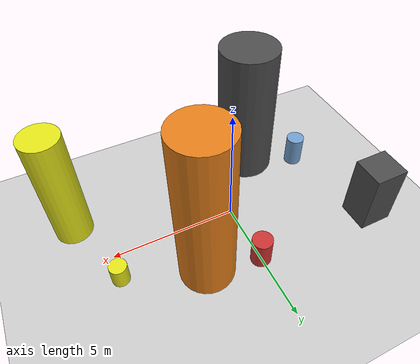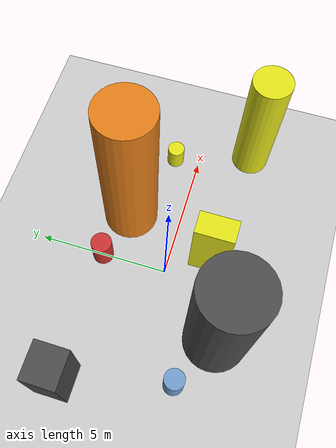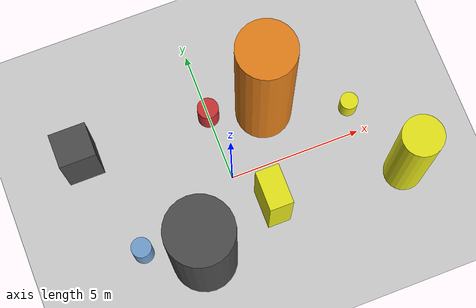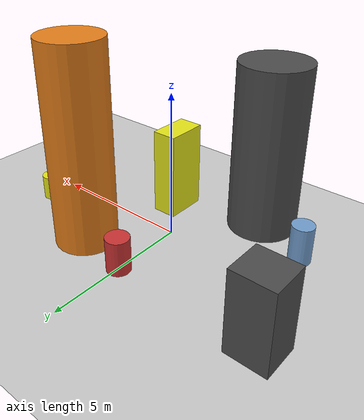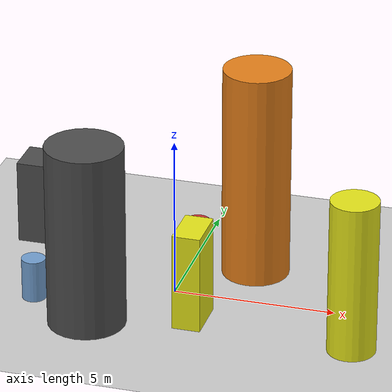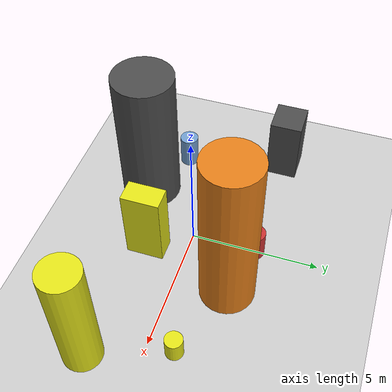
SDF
<?xml version='1.0'?>
<sdf version='1.6'>
  <world name='routeA_rl_v1__support_expansion__rl_train__mixed_3d_low_density_route__000128'>
    <!-- Sun light -->
    <light name='sun' type='directional'>
      <cast_shadows>1</cast_shadows>
      <pose>0 0 10 0 0 0</pose>
      <diffuse>0.8 0.8 0.8 1</diffuse>
      <specular>0.2 0.2 0.2 1</specular>
      <attenuation>
        <range>1000</range>
        <constant>0.9</constant>
        <linear>0.01</linear>
        <quadratic>0.001</quadratic>
      </attenuation>
      <direction>-0.5 0.1 -0.9</direction>
    </light>

    <!-- Ground plane -->
    <model name='ground_plane'>
      <static>1</static>
      <link name='link'>
        <collision name='collision'>
          <geometry>
            <plane>
              <normal>0 0 1</normal>
              <size>100 100</size>
            </plane>
          </geometry>
          <surface>
            <contact>
              <collide_bitmask>65535</collide_bitmask>
              <ode/>
            </contact>
            <friction>
              <ode>
                <mu>100</mu>
                <mu2>50</mu2>
              </ode>
              <torsional><ode/></torsional>
            </friction>
            <bounce/>
          </surface>
          <max_contacts>10</max_contacts>
        </collision>
        <visual name='visual'>
          <cast_shadows>0</cast_shadows>
          <geometry>
            <plane>
              <normal>0 0 1</normal>
              <size>100 100</size>
            </plane>
          </geometry>
          <material>
            <script>
              <uri>file://media/materials/scripts/gazebo.material</uri>
              <n>Gazebo/Grey</n>
            </script>
          </material>
        </visual>
      </link>
    </model>

    <!-- Environment -->
    <magnetic_field>6e-06 2.3e-05 -4.2e-05</magnetic_field>
    <atmosphere type='adiabatic'/>
    <physics name='default_physics' default='0' type='ode'>
      <gravity>0 0 -9.8</gravity>
      <max_step_size>0.004</max_step_size>
      <real_time_factor>1</real_time_factor>
      <real_time_update_rate>250</real_time_update_rate>
    </physics>
    <scene>
      <ambient>0.4 0.4 0.4 1</ambient>
      <background>0.7 0.7 0.7 1</background>
      <shadows>1</shadows>
    </scene>
    <wind/>
    <spherical_coordinates>
      <surface_model>EARTH_WGS84</surface_model>
      <latitude_deg>0</latitude_deg>
      <longitude_deg>0</longitude_deg>
      <elevation>0</elevation>
      <heading_deg>0</heading_deg>
    </spherical_coordinates>

    <!-- ============ OBSTACLES (8) ============ -->
    <model name='low_obs_0'>
      <static>1</static>
      <link name='link'>
        <visual name='visual'>
          <geometry>
            <cylinder>
              <radius>0.3722</radius>
              <length>1.3172</length>
            </cylinder>
          </geometry>
          <material>
            <script>
              <n>Gazebo/Blue</n>
              <uri>file://media/materials/scripts/gazebo.material</uri>
            </script>
            <ambient>0.447 0.624 0.812 1</ambient>
          </material>
        </visual>
        <collision name='collision'>
          <geometry>
            <cylinder>
              <radius>0.3722</radius>
              <length>1.3172</length>
            </cylinder>
          </geometry>
          <max_contacts>10</max_contacts>
          <surface>
            <contact><ode/></contact>
            <bounce/>
            <friction>
              <ode><mu>1</mu><mu2>1</mu2></ode>
              <torsional><ode/></torsional>
            </friction>
          </surface>
        </collision>
      </link>
      <pose>-4.0000 -1.5000 0.6586 0 0 0.0000</pose>
    </model>

    <model name='low_obs_1'>
      <static>1</static>
      <link name='link'>
        <visual name='visual'>
          <geometry>
            <cylinder>
              <radius>0.3966</radius>
              <length>1.1909</length>
            </cylinder>
          </geometry>
          <material>
            <script>
              <n>Gazebo/Red</n>
              <uri>file://media/materials/scripts/gazebo.material</uri>
            </script>
            <ambient>0.8 0.2 0.2 1</ambient>
          </material>
        </visual>
        <collision name='collision'>
          <geometry>
            <cylinder>
              <radius>0.3966</radius>
              <length>1.1909</length>
            </cylinder>
          </geometry>
          <max_contacts>10</max_contacts>
          <surface>
            <contact><ode/></contact>
            <bounce/>
            <friction>
              <ode><mu>1</mu><mu2>1</mu2></ode>
              <torsional><ode/></torsional>
            </friction>
          </surface>
        </collision>
      </link>
      <pose>0.0000 2.5000 0.5954 0 0 0.0000</pose>
    </model>

    <model name='low_obs_2'>
      <static>1</static>
      <link name='link'>
        <visual name='visual'>
          <geometry>
            <cylinder>
              <radius>0.3344</radius>
              <length>0.8762</length>
            </cylinder>
          </geometry>
          <material>
            <script>
              <n>Gazebo/Yellow</n>
              <uri>file://media/materials/scripts/gazebo.material</uri>
            </script>
            <ambient>0.9 0.9 0.1 1</ambient>
          </material>
        </visual>
        <collision name='collision'>
          <geometry>
            <cylinder>
              <radius>0.3344</radius>
              <length>0.8762</length>
            </cylinder>
          </geometry>
          <max_contacts>10</max_contacts>
          <surface>
            <contact><ode/></contact>
            <bounce/>
            <friction>
              <ode><mu>1</mu><mu2>1</mu2></ode>
              <torsional><ode/></torsional>
            </friction>
          </surface>
        </collision>
      </link>
      <pose>5.0000 1.0000 0.4381 0 0 0.0000</pose>
    </model>

    <model name='tall_obs_0'>
      <static>1</static>
      <link name='link'>
        <visual name='visual'>
          <geometry>
            <cylinder>
              <radius>1.1890</radius>
              <length>5.8032</length>
            </cylinder>
          </geometry>
          <material>
            <script>
              <n>Gazebo/DarkGrey</n>
              <uri>file://media/materials/scripts/gazebo.material</uri>
            </script>
            <ambient>0.3 0.3 0.3 1</ambient>
          </material>
        </visual>
        <collision name='collision'>
          <geometry>
            <cylinder>
              <radius>1.1890</radius>
              <length>5.8032</length>
            </cylinder>
          </geometry>
          <max_contacts>10</max_contacts>
          <surface>
            <contact><ode/></contact>
            <bounce/>
            <friction>
              <ode><mu>1</mu><mu2>1</mu2></ode>
              <torsional><ode/></torsional>
            </friction>
          </surface>
        </collision>
      </link>
      <pose>-2.0000 -2.5000 2.9016 0 0 0.0000</pose>
    </model>

    <model name='tall_obs_1'>
      <static>1</static>
      <link name='link'>
        <visual name='visual'>
          <geometry>
            <cylinder>
              <radius>1.0475</radius>
              <length>6.8086</length>
            </cylinder>
          </geometry>
          <material>
            <script>
              <n>Gazebo/Orange</n>
              <uri>file://media/materials/scripts/gazebo.material</uri>
            </script>
            <ambient>0.9 0.5 0.1 1</ambient>
          </material>
        </visual>
        <collision name='collision'>
          <geometry>
            <cylinder>
              <radius>1.0475</radius>
              <length>6.8086</length>
            </cylinder>
          </geometry>
          <max_contacts>10</max_contacts>
          <surface>
            <contact><ode/></contact>
            <bounce/>
            <friction>
              <ode><mu>1</mu><mu2>1</mu2></ode>
              <torsional><ode/></torsional>
            </friction>
          </surface>
        </collision>
      </link>
      <pose>2.0000 2.0000 3.4043 0 0 0.0000</pose>
    </model>

    <model name='tall_obs_2'>
      <static>1</static>
      <link name='link'>
        <visual name='visual'>
          <geometry>
            <cylinder>
              <radius>0.7330</radius>
              <length>4.9085</length>
            </cylinder>
          </geometry>
          <material>
            <script>
              <n>Gazebo/Yellow</n>
              <uri>file://media/materials/scripts/gazebo.material</uri>
            </script>
            <ambient>0.9 0.9 0.1 1</ambient>
          </material>
        </visual>
        <collision name='collision'>
          <geometry>
            <cylinder>
              <radius>0.7330</radius>
              <length>4.9085</length>
            </cylinder>
          </geometry>
          <max_contacts>10</max_contacts>
          <surface>
            <contact><ode/></contact>
            <bounce/>
            <friction>
              <ode><mu>1</mu><mu2>1</mu2></ode>
              <torsional><ode/></torsional>
            </friction>
          </surface>
        </collision>
      </link>
      <pose>6.0000 -2.0000 2.4543 0 0 0.0000</pose>
    </model>

    <model name='med_obs_0'>
      <static>1</static>
      <link name='link'>
        <visual name='visual'>
          <geometry>
            <box>
              <size>1.3494 1.2583 2.6760</size>
            </box>
          </geometry>
          <material>
            <script>
              <n>Gazebo/DarkGrey</n>
              <uri>file://media/materials/scripts/gazebo.material</uri>
            </script>
            <ambient>0.3 0.3 0.3 1</ambient>
          </material>
        </visual>
        <collision name='collision'>
          <geometry>
            <box>
              <size>1.3494 1.2583 2.6760</size>
            </box>
          </geometry>
          <max_contacts>10</max_contacts>
          <surface>
            <contact><ode/></contact>
            <bounce/>
            <friction>
              <ode><mu>1</mu><mu2>1</mu2></ode>
              <torsional><ode/></torsional>
            </friction>
          </surface>
        </collision>
      </link>
      <pose>-5.0000 2.5000 1.3380 0 0 0.0000</pose>
    </model>

    <model name='med_obs_1'>
      <static>1</static>
      <link name='link'>
        <visual name='visual'>
          <geometry>
            <box>
              <size>0.8634 1.4536 3.0717</size>
            </box>
          </geometry>
          <material>
            <script>
              <n>Gazebo/Yellow</n>
              <uri>file://media/materials/scripts/gazebo.material</uri>
            </script>
            <ambient>0.9 0.9 0.1 1</ambient>
          </material>
        </visual>
        <collision name='collision'>
          <geometry>
            <box>
              <size>0.8634 1.4536 3.0717</size>
            </box>
          </geometry>
          <max_contacts>10</max_contacts>
          <surface>
            <contact><ode/></contact>
            <bounce/>
            <friction>
              <ode><mu>1</mu><mu2>1</mu2></ode>
              <torsional><ode/></torsional>
            </friction>
          </surface>
        </collision>
      </link>
      <pose>1.0000 -1.5000 1.5359 0 0 0.0000</pose>
    </model>

    <!-- GUI camera -->
    <gui fullscreen='0'>
      <camera name='user_camera'>
        <pose>-15 0 18 0 0.85 0.15</pose>
        <view_controller>orbit</view_controller>
        <projection_type>perspective</projection_type>
      </camera>
    </gui>
  </world>
</sdf>
